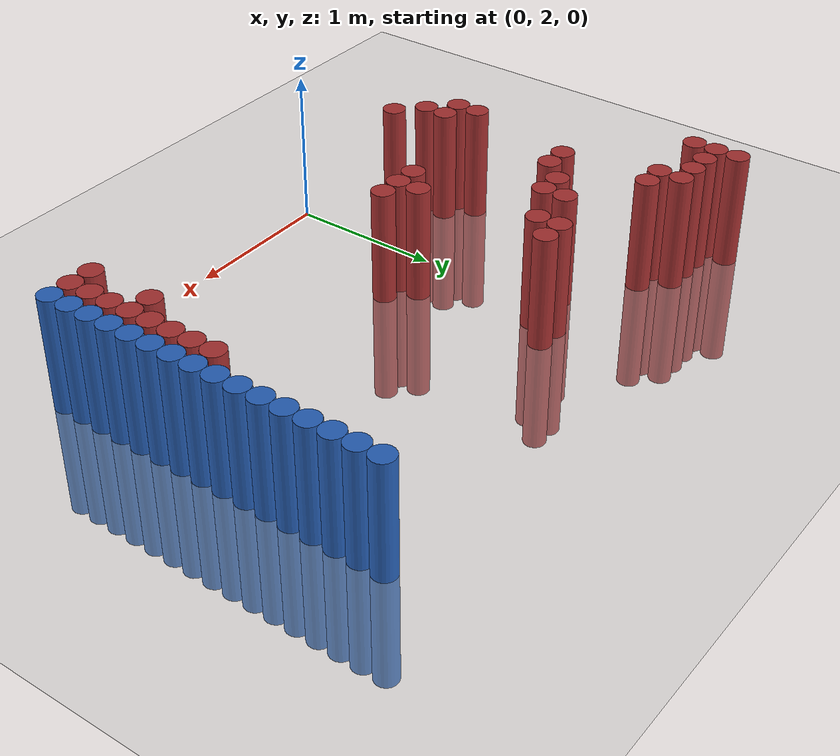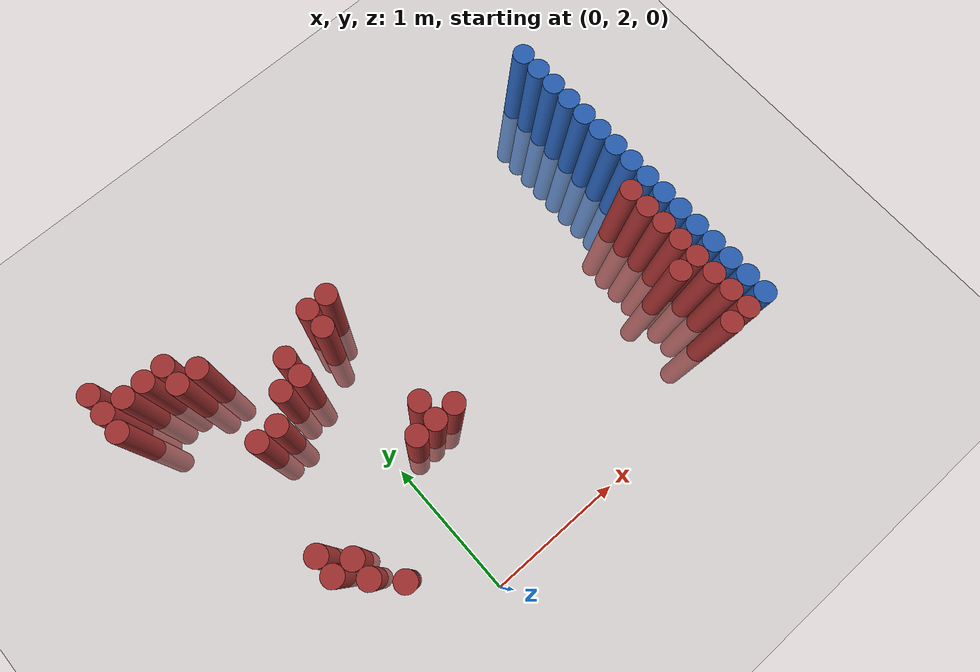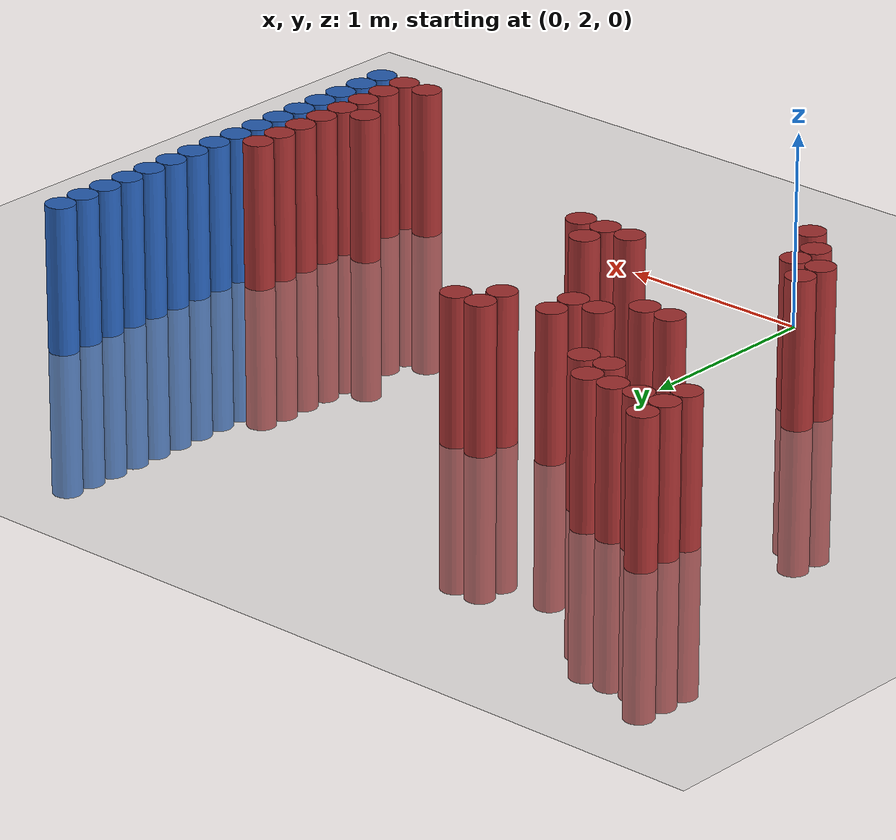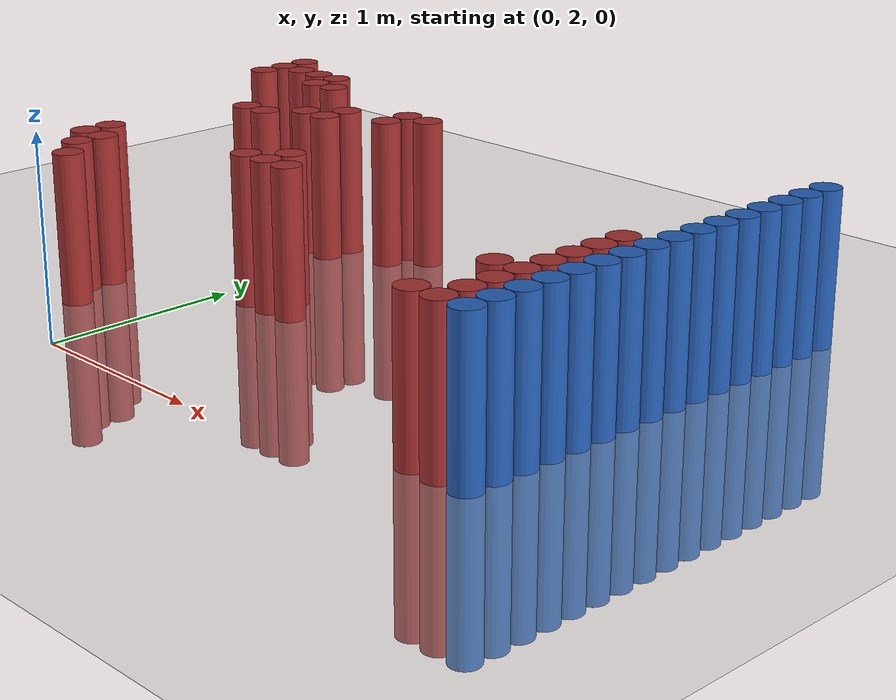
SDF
<sdf version="1.6">
 <world name="default">
  <model name="ground_plane">
   <static>1</static>
   <link name="link">
    <collision name="collision">
     <geometry><plane><normal>0 0 1</normal><size>100 100</size></plane></geometry>
     <surface><friction><ode><mu>100</mu><mu2>50</mu2></ode></friction></surface>
    </collision>
    <visual name="visual">
     <cast_shadows>0</cast_shadows>
     <geometry><plane><normal>0 0 1</normal><size>100 100</size></plane></geometry>
     <material>
      <script><uri>file://media/materials/scripts/gazebo.material</uri><name>Gazebo/Grey</name></script>
     </material>
    </visual>
   </link>
  </model>
  <model name="unit_cylinder_152">
   <static>1</static>
   <pose>-1.175000 4.225000 0.000000 0.000000 0.000000 0.000000</pose>
   <link name="link">
    <inertial>
     <mass>1</mass>
     <inertia><ixx>0.145833</ixx><ixy>0</ixy><ixz>0</ixz><iyy>0.145833</iyy><iyz>0</iyz><izz>0.125</izz></inertia>
    </inertial>
    <collision name="collision">
     <geometry><cylinder><radius>0.075000</radius><length>1.5</length></cylinder></geometry>
    </collision>
    <visual name="visual">
     <geometry><cylinder><radius>0.075000</radius><length>1.5</length></cylinder></geometry>
     <material>
      <ambient>0.648000 0.192000 0.192000 1</ambient>
      <diffuse>0.648000 0.192000 0.192000 1</diffuse>
     </material>
     <material>
      <script><name>Gazebo/Grey</name><uri>file://media/materials/scripts/gazebo.material</uri></script>
     </material>
    </visual>
   </link>
  </model>
  <model name="unit_cylinder_153">
   <static>1</static>
   <pose>-1.175000 4.375000 0.000000 0.000000 0.000000 0.000000</pose>
   <link name="link">
    <inertial>
     <mass>1</mass>
     <inertia><ixx>0.145833</ixx><ixy>0</ixy><ixz>0</ixz><iyy>0.145833</iyy><iyz>0</iyz><izz>0.125</izz></inertia>
    </inertial>
    <collision name="collision">
     <geometry><cylinder><radius>0.075000</radius><length>1.5</length></cylinder></geometry>
    </collision>
    <visual name="visual">
     <geometry><cylinder><radius>0.075000</radius><length>1.5</length></cylinder></geometry>
     <material>
      <ambient>0.648000 0.192000 0.192000 1</ambient>
      <diffuse>0.648000 0.192000 0.192000 1</diffuse>
     </material>
     <material>
      <script><name>Gazebo/Grey</name><uri>file://media/materials/scripts/gazebo.material</uri></script>
     </material>
    </visual>
   </link>
  </model>
  <model name="unit_cylinder_154">
   <static>1</static>
   <pose>-1.175000 4.525000 0.000000 0.000000 0.000000 0.000000</pose>
   <link name="link">
    <inertial>
     <mass>1</mass>
     <inertia><ixx>0.145833</ixx><ixy>0</ixy><ixz>0</ixz><iyy>0.145833</iyy><iyz>0</iyz><izz>0.125</izz></inertia>
    </inertial>
    <collision name="collision">
     <geometry><cylinder><radius>0.075000</radius><length>1.5</length></cylinder></geometry>
    </collision>
    <visual name="visual">
     <geometry><cylinder><radius>0.075000</radius><length>1.5</length></cylinder></geometry>
     <material>
      <ambient>0.648000 0.192000 0.192000 1</ambient>
      <diffuse>0.648000 0.192000 0.192000 1</diffuse>
     </material>
     <material>
      <script><name>Gazebo/Grey</name><uri>file://media/materials/scripts/gazebo.material</uri></script>
     </material>
    </visual>
   </link>
  </model>
  <model name="unit_cylinder_158">
   <static>1</static>
   <pose>-1.025000 4.375000 0.000000 0.000000 0.000000 0.000000</pose>
   <link name="link">
    <inertial>
     <mass>1</mass>
     <inertia><ixx>0.145833</ixx><ixy>0</ixy><ixz>0</ixz><iyy>0.145833</iyy><iyz>0</iyz><izz>0.125</izz></inertia>
    </inertial>
    <collision name="collision">
     <geometry><cylinder><radius>0.075000</radius><length>1.5</length></cylinder></geometry>
    </collision>
    <visual name="visual">
     <geometry><cylinder><radius>0.075000</radius><length>1.5</length></cylinder></geometry>
     <material>
      <ambient>0.648000 0.192000 0.192000 1</ambient>
      <diffuse>0.648000 0.192000 0.192000 1</diffuse>
     </material>
     <material>
      <script><name>Gazebo/Grey</name><uri>file://media/materials/scripts/gazebo.material</uri></script>
     </material>
    </visual>
   </link>
  </model>
  <model name="unit_cylinder_159">
   <static>1</static>
   <pose>-0.875000 4.375000 0.000000 0.000000 0.000000 0.000000</pose>
   <link name="link">
    <inertial>
     <mass>1</mass>
     <inertia><ixx>0.145833</ixx><ixy>0</ixy><ixz>0</ixz><iyy>0.145833</iyy><iyz>0</iyz><izz>0.125</izz></inertia>
    </inertial>
    <collision name="collision">
     <geometry><cylinder><radius>0.075000</radius><length>1.5</length></cylinder></geometry>
    </collision>
    <visual name="visual">
     <geometry><cylinder><radius>0.075000</radius><length>1.5</length></cylinder></geometry>
     <material>
      <ambient>0.648000 0.192000 0.192000 1</ambient>
      <diffuse>0.648000 0.192000 0.192000 1</diffuse>
     </material>
     <material>
      <script><name>Gazebo/Grey</name><uri>file://media/materials/scripts/gazebo.material</uri></script>
     </material>
    </visual>
   </link>
  </model>
  <model name="unit_cylinder_160">
   <static>1</static>
   <pose>-0.725000 2.725000 0.000000 0.000000 0.000000 0.000000</pose>
   <link name="link">
    <inertial>
     <mass>1</mass>
     <inertia><ixx>0.145833</ixx><ixy>0</ixy><ixz>0</ixz><iyy>0.145833</iyy><iyz>0</iyz><izz>0.125</izz></inertia>
    </inertial>
    <collision name="collision">
     <geometry><cylinder><radius>0.075000</radius><length>1.5</length></cylinder></geometry>
    </collision>
    <visual name="visual">
     <geometry><cylinder><radius>0.075000</radius><length>1.5</length></cylinder></geometry>
     <material>
      <ambient>0.648000 0.192000 0.192000 1</ambient>
      <diffuse>0.648000 0.192000 0.192000 1</diffuse>
     </material>
     <material>
      <script><name>Gazebo/Grey</name><uri>file://media/materials/scripts/gazebo.material</uri></script>
     </material>
    </visual>
   </link>
  </model>
  <model name="unit_cylinder_161">
   <static>1</static>
   <pose>-0.725000 2.875000 0.000000 0.000000 0.000000 0.000000</pose>
   <link name="link">
    <inertial>
     <mass>1</mass>
     <inertia><ixx>0.145833</ixx><ixy>0</ixy><ixz>0</ixz><iyy>0.145833</iyy><iyz>0</iyz><izz>0.125</izz></inertia>
    </inertial>
    <collision name="collision">
     <geometry><cylinder><radius>0.075000</radius><length>1.5</length></cylinder></geometry>
    </collision>
    <visual name="visual">
     <geometry><cylinder><radius>0.075000</radius><length>1.5</length></cylinder></geometry>
     <material>
      <ambient>0.648000 0.192000 0.192000 1</ambient>
      <diffuse>0.648000 0.192000 0.192000 1</diffuse>
     </material>
     <material>
      <script><name>Gazebo/Grey</name><uri>file://media/materials/scripts/gazebo.material</uri></script>
     </material>
    </visual>
   </link>
  </model>
  <model name="unit_cylinder_162">
   <static>1</static>
   <pose>-0.725000 4.225000 0.000000 0.000000 0.000000 0.000000</pose>
   <link name="link">
    <inertial>
     <mass>1</mass>
     <inertia><ixx>0.145833</ixx><ixy>0</ixy><ixz>0</ixz><iyy>0.145833</iyy><iyz>0</iyz><izz>0.125</izz></inertia>
    </inertial>
    <collision name="collision">
     <geometry><cylinder><radius>0.075000</radius><length>1.5</length></cylinder></geometry>
    </collision>
    <visual name="visual">
     <geometry><cylinder><radius>0.075000</radius><length>1.5</length></cylinder></geometry>
     <material>
      <ambient>0.648000 0.192000 0.192000 1</ambient>
      <diffuse>0.648000 0.192000 0.192000 1</diffuse>
     </material>
     <material>
      <script><name>Gazebo/Grey</name><uri>file://media/materials/scripts/gazebo.material</uri></script>
     </material>
    </visual>
   </link>
  </model>
  <model name="unit_cylinder_163">
   <static>1</static>
   <pose>-0.725000 4.375000 0.000000 0.000000 0.000000 0.000000</pose>
   <link name="link">
    <inertial>
     <mass>1</mass>
     <inertia><ixx>0.145833</ixx><ixy>0</ixy><ixz>0</ixz><iyy>0.145833</iyy><iyz>0</iyz><izz>0.125</izz></inertia>
    </inertial>
    <collision name="collision">
     <geometry><cylinder><radius>0.075000</radius><length>1.5</length></cylinder></geometry>
    </collision>
    <visual name="visual">
     <geometry><cylinder><radius>0.075000</radius><length>1.5</length></cylinder></geometry>
     <material>
      <ambient>0.648000 0.192000 0.192000 1</ambient>
      <diffuse>0.648000 0.192000 0.192000 1</diffuse>
     </material>
     <material>
      <script><name>Gazebo/Grey</name><uri>file://media/materials/scripts/gazebo.material</uri></script>
     </material>
    </visual>
   </link>
  </model>
  <model name="unit_cylinder_164">
   <static>1</static>
   <pose>-0.575000 2.575000 0.000000 0.000000 0.000000 0.000000</pose>
   <link name="link">
    <inertial>
     <mass>1</mass>
     <inertia><ixx>0.145833</ixx><ixy>0</ixy><ixz>0</ixz><iyy>0.145833</iyy><iyz>0</iyz><izz>0.125</izz></inertia>
    </inertial>
    <collision name="collision">
     <geometry><cylinder><radius>0.075000</radius><length>1.5</length></cylinder></geometry>
    </collision>
    <visual name="visual">
     <geometry><cylinder><radius>0.075000</radius><length>1.5</length></cylinder></geometry>
     <material>
      <ambient>0.648000 0.192000 0.192000 1</ambient>
      <diffuse>0.648000 0.192000 0.192000 1</diffuse>
     </material>
     <material>
      <script><name>Gazebo/Grey</name><uri>file://media/materials/scripts/gazebo.material</uri></script>
     </material>
    </visual>
   </link>
  </model>
  <model name="unit_cylinder_165">
   <static>1</static>
   <pose>-0.575000 2.725000 0.000000 0.000000 0.000000 0.000000</pose>
   <link name="link">
    <inertial>
     <mass>1</mass>
     <inertia><ixx>0.145833</ixx><ixy>0</ixy><ixz>0</ixz><iyy>0.145833</iyy><iyz>0</iyz><izz>0.125</izz></inertia>
    </inertial>
    <collision name="collision">
     <geometry><cylinder><radius>0.075000</radius><length>1.5</length></cylinder></geometry>
    </collision>
    <visual name="visual">
     <geometry><cylinder><radius>0.075000</radius><length>1.5</length></cylinder></geometry>
     <material>
      <ambient>0.648000 0.192000 0.192000 1</ambient>
      <diffuse>0.648000 0.192000 0.192000 1</diffuse>
     </material>
     <material>
      <script><name>Gazebo/Grey</name><uri>file://media/materials/scripts/gazebo.material</uri></script>
     </material>
    </visual>
   </link>
  </model>
  <model name="unit_cylinder_166">
   <static>1</static>
   <pose>-0.575000 3.625000 0.000000 0.000000 0.000000 0.000000</pose>
   <link name="link">
    <inertial>
     <mass>1</mass>
     <inertia><ixx>0.145833</ixx><ixy>0</ixy><ixz>0</ixz><iyy>0.145833</iyy><iyz>0</iyz><izz>0.125</izz></inertia>
    </inertial>
    <collision name="collision">
     <geometry><cylinder><radius>0.075000</radius><length>1.5</length></cylinder></geometry>
    </collision>
    <visual name="visual">
     <geometry><cylinder><radius>0.075000</radius><length>1.5</length></cylinder></geometry>
     <material>
      <ambient>0.648000 0.192000 0.192000 1</ambient>
      <diffuse>0.648000 0.192000 0.192000 1</diffuse>
     </material>
     <material>
      <script><name>Gazebo/Grey</name><uri>file://media/materials/scripts/gazebo.material</uri></script>
     </material>
    </visual>
   </link>
  </model>
  <model name="unit_cylinder_167">
   <static>1</static>
   <pose>-0.575000 4.225000 0.000000 0.000000 0.000000 0.000000</pose>
   <link name="link">
    <inertial>
     <mass>1</mass>
     <inertia><ixx>0.145833</ixx><ixy>0</ixy><ixz>0</ixz><iyy>0.145833</iyy><iyz>0</iyz><izz>0.125</izz></inertia>
    </inertial>
    <collision name="collision">
     <geometry><cylinder><radius>0.075000</radius><length>1.5</length></cylinder></geometry>
    </collision>
    <visual name="visual">
     <geometry><cylinder><radius>0.075000</radius><length>1.5</length></cylinder></geometry>
     <material>
      <ambient>0.648000 0.192000 0.192000 1</ambient>
      <diffuse>0.648000 0.192000 0.192000 1</diffuse>
     </material>
     <material>
      <script><name>Gazebo/Grey</name><uri>file://media/materials/scripts/gazebo.material</uri></script>
     </material>
    </visual>
   </link>
  </model>
  <model name="unit_cylinder_171">
   <static>1</static>
   <pose>-0.425000 2.425000 0.000000 0.000000 0.000000 0.000000</pose>
   <link name="link">
    <inertial>
     <mass>1</mass>
     <inertia><ixx>0.145833</ixx><ixy>0</ixy><ixz>0</ixz><iyy>0.145833</iyy><iyz>0</iyz><izz>0.125</izz></inertia>
    </inertial>
    <collision name="collision">
     <geometry><cylinder><radius>0.075000</radius><length>1.5</length></cylinder></geometry>
    </collision>
    <visual name="visual">
     <geometry><cylinder><radius>0.075000</radius><length>1.5</length></cylinder></geometry>
     <material>
      <ambient>0.648000 0.192000 0.192000 1</ambient>
      <diffuse>0.648000 0.192000 0.192000 1</diffuse>
     </material>
     <material>
      <script><name>Gazebo/Grey</name><uri>file://media/materials/scripts/gazebo.material</uri></script>
     </material>
    </visual>
   </link>
  </model>
  <model name="unit_cylinder_172">
   <static>1</static>
   <pose>-0.425000 3.625000 0.000000 0.000000 0.000000 0.000000</pose>
   <link name="link">
    <inertial>
     <mass>1</mass>
     <inertia><ixx>0.145833</ixx><ixy>0</ixy><ixz>0</ixz><iyy>0.145833</iyy><iyz>0</iyz><izz>0.125</izz></inertia>
    </inertial>
    <collision name="collision">
     <geometry><cylinder><radius>0.075000</radius><length>1.5</length></cylinder></geometry>
    </collision>
    <visual name="visual">
     <geometry><cylinder><radius>0.075000</radius><length>1.5</length></cylinder></geometry>
     <material>
      <ambient>0.648000 0.192000 0.192000 1</ambient>
      <diffuse>0.648000 0.192000 0.192000 1</diffuse>
     </material>
     <material>
      <script><name>Gazebo/Grey</name><uri>file://media/materials/scripts/gazebo.material</uri></script>
     </material>
    </visual>
   </link>
  </model>
  <model name="unit_cylinder_174">
   <static>1</static>
   <pose>-0.275000 3.775000 0.000000 0.000000 0.000000 0.000000</pose>
   <link name="link">
    <inertial>
     <mass>1</mass>
     <inertia><ixx>0.145833</ixx><ixy>0</ixy><ixz>0</ixz><iyy>0.145833</iyy><iyz>0</iyz><izz>0.125</izz></inertia>
    </inertial>
    <collision name="collision">
     <geometry><cylinder><radius>0.075000</radius><length>1.5</length></cylinder></geometry>
    </collision>
    <visual name="visual">
     <geometry><cylinder><radius>0.075000</radius><length>1.5</length></cylinder></geometry>
     <material>
      <ambient>0.648000 0.192000 0.192000 1</ambient>
      <diffuse>0.648000 0.192000 0.192000 1</diffuse>
     </material>
     <material>
      <script><name>Gazebo/Grey</name><uri>file://media/materials/scripts/gazebo.material</uri></script>
     </material>
    </visual>
   </link>
  </model>
  <model name="unit_cylinder_175">
   <static>1</static>
   <pose>-0.125000 3.775000 0.000000 0.000000 0.000000 0.000000</pose>
   <link name="link">
    <inertial>
     <mass>1</mass>
     <inertia><ixx>0.145833</ixx><ixy>0</ixy><ixz>0</ixz><iyy>0.145833</iyy><iyz>0</iyz><izz>0.125</izz></inertia>
    </inertial>
    <collision name="collision">
     <geometry><cylinder><radius>0.075000</radius><length>1.5</length></cylinder></geometry>
    </collision>
    <visual name="visual">
     <geometry><cylinder><radius>0.075000</radius><length>1.5</length></cylinder></geometry>
     <material>
      <ambient>0.648000 0.192000 0.192000 1</ambient>
      <diffuse>0.648000 0.192000 0.192000 1</diffuse>
     </material>
     <material>
      <script><name>Gazebo/Grey</name><uri>file://media/materials/scripts/gazebo.material</uri></script>
     </material>
    </visual>
   </link>
  </model>
  <model name="unit_cylinder_176">
   <static>1</static>
   <pose>-0.125000 3.925000 0.000000 0.000000 0.000000 0.000000</pose>
   <link name="link">
    <inertial>
     <mass>1</mass>
     <inertia><ixx>0.145833</ixx><ixy>0</ixy><ixz>0</ixz><iyy>0.145833</iyy><iyz>0</iyz><izz>0.125</izz></inertia>
    </inertial>
    <collision name="collision">
     <geometry><cylinder><radius>0.075000</radius><length>1.5</length></cylinder></geometry>
    </collision>
    <visual name="visual">
     <geometry><cylinder><radius>0.075000</radius><length>1.5</length></cylinder></geometry>
     <material>
      <ambient>0.648000 0.192000 0.192000 1</ambient>
      <diffuse>0.648000 0.192000 0.192000 1</diffuse>
     </material>
     <material>
      <script><name>Gazebo/Grey</name><uri>file://media/materials/scripts/gazebo.material</uri></script>
     </material>
    </visual>
   </link>
  </model>
  <model name="unit_cylinder_177">
   <static>1</static>
   <pose>0.175000 3.025000 0.000000 0.000000 0.000000 0.000000</pose>
   <link name="link">
    <inertial>
     <mass>1</mass>
     <inertia><ixx>0.145833</ixx><ixy>0</ixy><ixz>0</ixz><iyy>0.145833</iyy><iyz>0</iyz><izz>0.125</izz></inertia>
    </inertial>
    <collision name="collision">
     <geometry><cylinder><radius>0.075000</radius><length>1.5</length></cylinder></geometry>
    </collision>
    <visual name="visual">
     <geometry><cylinder><radius>0.075000</radius><length>1.5</length></cylinder></geometry>
     <material>
      <ambient>0.648000 0.192000 0.192000 1</ambient>
      <diffuse>0.648000 0.192000 0.192000 1</diffuse>
     </material>
     <material>
      <script><name>Gazebo/Grey</name><uri>file://media/materials/scripts/gazebo.material</uri></script>
     </material>
    </visual>
   </link>
  </model>
  <model name="unit_cylinder_178">
   <static>1</static>
   <pose>0.175000 3.925000 0.000000 0.000000 0.000000 0.000000</pose>
   <link name="link">
    <inertial>
     <mass>1</mass>
     <inertia><ixx>0.145833</ixx><ixy>0</ixy><ixz>0</ixz><iyy>0.145833</iyy><iyz>0</iyz><izz>0.125</izz></inertia>
    </inertial>
    <collision name="collision">
     <geometry><cylinder><radius>0.075000</radius><length>1.5</length></cylinder></geometry>
    </collision>
    <visual name="visual">
     <geometry><cylinder><radius>0.075000</radius><length>1.5</length></cylinder></geometry>
     <material>
      <ambient>0.648000 0.192000 0.192000 1</ambient>
      <diffuse>0.648000 0.192000 0.192000 1</diffuse>
     </material>
     <material>
      <script><name>Gazebo/Grey</name><uri>file://media/materials/scripts/gazebo.material</uri></script>
     </material>
    </visual>
   </link>
  </model>
  <model name="unit_cylinder_179">
   <static>1</static>
   <pose>0.175000 4.075000 0.000000 0.000000 0.000000 0.000000</pose>
   <link name="link">
    <inertial>
     <mass>1</mass>
     <inertia><ixx>0.145833</ixx><ixy>0</ixy><ixz>0</ixz><iyy>0.145833</iyy><iyz>0</iyz><izz>0.125</izz></inertia>
    </inertial>
    <collision name="collision">
     <geometry><cylinder><radius>0.075000</radius><length>1.5</length></cylinder></geometry>
    </collision>
    <visual name="visual">
     <geometry><cylinder><radius>0.075000</radius><length>1.5</length></cylinder></geometry>
     <material>
      <ambient>0.648000 0.192000 0.192000 1</ambient>
      <diffuse>0.648000 0.192000 0.192000 1</diffuse>
     </material>
     <material>
      <script><name>Gazebo/Grey</name><uri>file://media/materials/scripts/gazebo.material</uri></script>
     </material>
    </visual>
   </link>
  </model>
  <model name="unit_cylinder_181">
   <static>1</static>
   <pose>0.325000 3.025000 0.000000 0.000000 0.000000 0.000000</pose>
   <link name="link">
    <inertial>
     <mass>1</mass>
     <inertia><ixx>0.145833</ixx><ixy>0</ixy><ixz>0</ixz><iyy>0.145833</iyy><iyz>0</iyz><izz>0.125</izz></inertia>
    </inertial>
    <collision name="collision">
     <geometry><cylinder><radius>0.075000</radius><length>1.5</length></cylinder></geometry>
    </collision>
    <visual name="visual">
     <geometry><cylinder><radius>0.075000</radius><length>1.5</length></cylinder></geometry>
     <material>
      <ambient>0.648000 0.192000 0.192000 1</ambient>
      <diffuse>0.648000 0.192000 0.192000 1</diffuse>
     </material>
     <material>
      <script><name>Gazebo/Grey</name><uri>file://media/materials/scripts/gazebo.material</uri></script>
     </material>
    </visual>
   </link>
  </model>
  <model name="unit_cylinder_182">
   <static>1</static>
   <pose>0.325000 3.175000 0.000000 0.000000 0.000000 0.000000</pose>
   <link name="link">
    <inertial>
     <mass>1</mass>
     <inertia><ixx>0.145833</ixx><ixy>0</ixy><ixz>0</ixz><iyy>0.145833</iyy><iyz>0</iyz><izz>0.125</izz></inertia>
    </inertial>
    <collision name="collision">
     <geometry><cylinder><radius>0.075000</radius><length>1.5</length></cylinder></geometry>
    </collision>
    <visual name="visual">
     <geometry><cylinder><radius>0.075000</radius><length>1.5</length></cylinder></geometry>
     <material>
      <ambient>0.648000 0.192000 0.192000 1</ambient>
      <diffuse>0.648000 0.192000 0.192000 1</diffuse>
     </material>
     <material>
      <script><name>Gazebo/Grey</name><uri>file://media/materials/scripts/gazebo.material</uri></script>
     </material>
    </visual>
   </link>
  </model>
  <model name="unit_cylinder_183">
   <static>1</static>
   <pose>0.325000 4.075000 0.000000 0.000000 0.000000 0.000000</pose>
   <link name="link">
    <inertial>
     <mass>1</mass>
     <inertia><ixx>0.145833</ixx><ixy>0</ixy><ixz>0</ixz><iyy>0.145833</iyy><iyz>0</iyz><izz>0.125</izz></inertia>
    </inertial>
    <collision name="collision">
     <geometry><cylinder><radius>0.075000</radius><length>1.5</length></cylinder></geometry>
    </collision>
    <visual name="visual">
     <geometry><cylinder><radius>0.075000</radius><length>1.5</length></cylinder></geometry>
     <material>
      <ambient>0.648000 0.192000 0.192000 1</ambient>
      <diffuse>0.648000 0.192000 0.192000 1</diffuse>
     </material>
     <material>
      <script><name>Gazebo/Grey</name><uri>file://media/materials/scripts/gazebo.material</uri></script>
     </material>
    </visual>
   </link>
  </model>
  <model name="unit_cylinder_184">
   <static>1</static>
   <pose>0.475000 3.025000 0.000000 0.000000 0.000000 0.000000</pose>
   <link name="link">
    <inertial>
     <mass>1</mass>
     <inertia><ixx>0.145833</ixx><ixy>0</ixy><ixz>0</ixz><iyy>0.145833</iyy><iyz>0</iyz><izz>0.125</izz></inertia>
    </inertial>
    <collision name="collision">
     <geometry><cylinder><radius>0.075000</radius><length>1.5</length></cylinder></geometry>
    </collision>
    <visual name="visual">
     <geometry><cylinder><radius>0.075000</radius><length>1.5</length></cylinder></geometry>
     <material>
      <ambient>0.648000 0.192000 0.192000 1</ambient>
      <diffuse>0.648000 0.192000 0.192000 1</diffuse>
     </material>
     <material>
      <script><name>Gazebo/Grey</name><uri>file://media/materials/scripts/gazebo.material</uri></script>
     </material>
    </visual>
   </link>
  </model>
  <model name="unit_cylinder_210">
   <static>1</static>
   <pose>2.125000 2.275000 0.000000 0.000000 0.000000 0.000000</pose>
   <link name="link">
    <inertial>
     <mass>1</mass>
     <inertia><ixx>0.145833</ixx><ixy>0</ixy><ixz>0</ixz><iyy>0.145833</iyy><iyz>0</iyz><izz>0.125</izz></inertia>
    </inertial>
    <collision name="collision">
     <geometry><cylinder><radius>0.075000</radius><length>1.5</length></cylinder></geometry>
    </collision>
    <visual name="visual">
     <geometry><cylinder><radius>0.075000</radius><length>1.5</length></cylinder></geometry>
     <material>
      <ambient>0.648000 0.192000 0.192000 1</ambient>
      <diffuse>0.648000 0.192000 0.192000 1</diffuse>
     </material>
     <material>
      <script><name>Gazebo/Grey</name><uri>file://media/materials/scripts/gazebo.material</uri></script>
     </material>
    </visual>
   </link>
  </model>
  <model name="unit_cylinder_211">
   <static>1</static>
   <pose>2.125000 2.725000 0.000000 0.000000 0.000000 0.000000</pose>
   <link name="link">
    <inertial>
     <mass>1</mass>
     <inertia><ixx>0.145833</ixx><ixy>0</ixy><ixz>0</ixz><iyy>0.145833</iyy><iyz>0</iyz><izz>0.125</izz></inertia>
    </inertial>
    <collision name="collision">
     <geometry><cylinder><radius>0.075000</radius><length>1.5</length></cylinder></geometry>
    </collision>
    <visual name="visual">
     <geometry><cylinder><radius>0.075000</radius><length>1.5</length></cylinder></geometry>
     <material>
      <ambient>0.648000 0.192000 0.192000 1</ambient>
      <diffuse>0.648000 0.192000 0.192000 1</diffuse>
     </material>
     <material>
      <script><name>Gazebo/Grey</name><uri>file://media/materials/scripts/gazebo.material</uri></script>
     </material>
    </visual>
   </link>
  </model>
  <model name="unit_cylinder_218">
   <static>1</static>
   <pose>2.275000 2.275000 0.000000 0.000000 0.000000 0.000000</pose>
   <link name="link">
    <inertial>
     <mass>1</mass>
     <inertia><ixx>0.145833</ixx><ixy>0</ixy><ixz>0</ixz><iyy>0.145833</iyy><iyz>0</iyz><izz>0.125</izz></inertia>
    </inertial>
    <collision name="collision">
     <geometry><cylinder><radius>0.075000</radius><length>1.5</length></cylinder></geometry>
    </collision>
    <visual name="visual">
     <geometry><cylinder><radius>0.075000</radius><length>1.5</length></cylinder></geometry>
     <material>
      <ambient>0.648000 0.192000 0.192000 1</ambient>
      <diffuse>0.648000 0.192000 0.192000 1</diffuse>
     </material>
     <material>
      <script><name>Gazebo/Grey</name><uri>file://media/materials/scripts/gazebo.material</uri></script>
     </material>
    </visual>
   </link>
  </model>
  <model name="unit_cylinder_219">
   <static>1</static>
   <pose>2.275000 2.425000 0.000000 0.000000 0.000000 0.000000</pose>
   <link name="link">
    <inertial>
     <mass>1</mass>
     <inertia><ixx>0.145833</ixx><ixy>0</ixy><ixz>0</ixz><iyy>0.145833</iyy><iyz>0</iyz><izz>0.125</izz></inertia>
    </inertial>
    <collision name="collision">
     <geometry><cylinder><radius>0.075000</radius><length>1.5</length></cylinder></geometry>
    </collision>
    <visual name="visual">
     <geometry><cylinder><radius>0.075000</radius><length>1.5</length></cylinder></geometry>
     <material>
      <ambient>0.648000 0.192000 0.192000 1</ambient>
      <diffuse>0.648000 0.192000 0.192000 1</diffuse>
     </material>
     <material>
      <script><name>Gazebo/Grey</name><uri>file://media/materials/scripts/gazebo.material</uri></script>
     </material>
    </visual>
   </link>
  </model>
  <model name="unit_cylinder_220">
   <static>1</static>
   <pose>2.275000 2.575000 0.000000 0.000000 0.000000 0.000000</pose>
   <link name="link">
    <inertial>
     <mass>1</mass>
     <inertia><ixx>0.145833</ixx><ixy>0</ixy><ixz>0</ixz><iyy>0.145833</iyy><iyz>0</iyz><izz>0.125</izz></inertia>
    </inertial>
    <collision name="collision">
     <geometry><cylinder><radius>0.075000</radius><length>1.5</length></cylinder></geometry>
    </collision>
    <visual name="visual">
     <geometry><cylinder><radius>0.075000</radius><length>1.5</length></cylinder></geometry>
     <material>
      <ambient>0.648000 0.192000 0.192000 1</ambient>
      <diffuse>0.648000 0.192000 0.192000 1</diffuse>
     </material>
     <material>
      <script><name>Gazebo/Grey</name><uri>file://media/materials/scripts/gazebo.material</uri></script>
     </material>
    </visual>
   </link>
  </model>
  <model name="unit_cylinder_221">
   <static>1</static>
   <pose>2.275000 2.725000 0.000000 0.000000 0.000000 0.000000</pose>
   <link name="link">
    <inertial>
     <mass>1</mass>
     <inertia><ixx>0.145833</ixx><ixy>0</ixy><ixz>0</ixz><iyy>0.145833</iyy><iyz>0</iyz><izz>0.125</izz></inertia>
    </inertial>
    <collision name="collision">
     <geometry><cylinder><radius>0.075000</radius><length>1.5</length></cylinder></geometry>
    </collision>
    <visual name="visual">
     <geometry><cylinder><radius>0.075000</radius><length>1.5</length></cylinder></geometry>
     <material>
      <ambient>0.648000 0.192000 0.192000 1</ambient>
      <diffuse>0.648000 0.192000 0.192000 1</diffuse>
     </material>
     <material>
      <script><name>Gazebo/Grey</name><uri>file://media/materials/scripts/gazebo.material</uri></script>
     </material>
    </visual>
   </link>
  </model>
  <model name="unit_cylinder_222">
   <static>1</static>
   <pose>2.275000 2.875000 0.000000 0.000000 0.000000 0.000000</pose>
   <link name="link">
    <inertial>
     <mass>1</mass>
     <inertia><ixx>0.145833</ixx><ixy>0</ixy><ixz>0</ixz><iyy>0.145833</iyy><iyz>0</iyz><izz>0.125</izz></inertia>
    </inertial>
    <collision name="collision">
     <geometry><cylinder><radius>0.075000</radius><length>1.5</length></cylinder></geometry>
    </collision>
    <visual name="visual">
     <geometry><cylinder><radius>0.075000</radius><length>1.5</length></cylinder></geometry>
     <material>
      <ambient>0.648000 0.192000 0.192000 1</ambient>
      <diffuse>0.648000 0.192000 0.192000 1</diffuse>
     </material>
     <material>
      <script><name>Gazebo/Grey</name><uri>file://media/materials/scripts/gazebo.material</uri></script>
     </material>
    </visual>
   </link>
  </model>
  <model name="unit_cylinder_223">
   <static>1</static>
   <pose>2.275000 3.025000 0.000000 0.000000 0.000000 0.000000</pose>
   <link name="link">
    <inertial>
     <mass>1</mass>
     <inertia><ixx>0.145833</ixx><ixy>0</ixy><ixz>0</ixz><iyy>0.145833</iyy><iyz>0</iyz><izz>0.125</izz></inertia>
    </inertial>
    <collision name="collision">
     <geometry><cylinder><radius>0.075000</radius><length>1.5</length></cylinder></geometry>
    </collision>
    <visual name="visual">
     <geometry><cylinder><radius>0.075000</radius><length>1.5</length></cylinder></geometry>
     <material>
      <ambient>0.648000 0.192000 0.192000 1</ambient>
      <diffuse>0.648000 0.192000 0.192000 1</diffuse>
     </material>
     <material>
      <script><name>Gazebo/Grey</name><uri>file://media/materials/scripts/gazebo.material</uri></script>
     </material>
    </visual>
   </link>
  </model>
  <model name="unit_cylinder_224">
   <static>1</static>
   <pose>2.275000 3.175000 0.000000 0.000000 0.000000 0.000000</pose>
   <link name="link">
    <inertial>
     <mass>1</mass>
     <inertia><ixx>0.145833</ixx><ixy>0</ixy><ixz>0</ixz><iyy>0.145833</iyy><iyz>0</iyz><izz>0.125</izz></inertia>
    </inertial>
    <collision name="collision">
     <geometry><cylinder><radius>0.075000</radius><length>1.5</length></cylinder></geometry>
    </collision>
    <visual name="visual">
     <geometry><cylinder><radius>0.075000</radius><length>1.5</length></cylinder></geometry>
     <material>
      <ambient>0.648000 0.192000 0.192000 1</ambient>
      <diffuse>0.648000 0.192000 0.192000 1</diffuse>
     </material>
     <material>
      <script><name>Gazebo/Grey</name><uri>file://media/materials/scripts/gazebo.material</uri></script>
     </material>
    </visual>
   </link>
  </model>
  <model name="unit_cylinder_225">
   <static>1</static>
   <pose>2.275000 3.325000 0.000000 0.000000 0.000000 0.000000</pose>
   <link name="link">
    <inertial>
     <mass>1</mass>
     <inertia><ixx>0.145833</ixx><ixy>0</ixy><ixz>0</ixz><iyy>0.145833</iyy><iyz>0</iyz><izz>0.125</izz></inertia>
    </inertial>
    <collision name="collision">
     <geometry><cylinder><radius>0.075000</radius><length>1.5</length></cylinder></geometry>
    </collision>
    <visual name="visual">
     <geometry><cylinder><radius>0.075000</radius><length>1.5</length></cylinder></geometry>
     <material>
      <ambient>0.648000 0.192000 0.192000 1</ambient>
      <diffuse>0.648000 0.192000 0.192000 1</diffuse>
     </material>
     <material>
      <script><name>Gazebo/Grey</name><uri>file://media/materials/scripts/gazebo.material</uri></script>
     </material>
    </visual>
   </link>
  </model>
  <model name="unit_cylinder_240">
   <static>1</static>
   <pose>2.425000 2.275000 0.000000 0.000000 0.000000 0.000000</pose>
   <link name="link">
    <inertial>
     <mass>1</mass>
     <inertia><ixx>0.145833</ixx><ixy>0</ixy><ixz>0</ixz><iyy>0.145833</iyy><iyz>0</iyz><izz>0.125</izz></inertia>
    </inertial>
    <collision name="collision">
     <geometry><cylinder><radius>0.075000</radius><length>1.5</length></cylinder></geometry>
    </collision>
    <visual name="visual">
     <geometry><cylinder><radius>0.075000</radius><length>1.5</length></cylinder></geometry>
     <material>
      <ambient>0.152000 0.379000 0.720000 1</ambient>
      <diffuse>0.152000 0.379000 0.720000 1</diffuse>
     </material>
     <material>
      <script><name>Gazebo/Grey</name><uri>file://media/materials/scripts/gazebo.material</uri></script>
     </material>
    </visual>
   </link>
  </model>
  <model name="unit_cylinder_241">
   <static>1</static>
   <pose>2.425000 2.425000 0.000000 0.000000 0.000000 0.000000</pose>
   <link name="link">
    <inertial>
     <mass>1</mass>
     <inertia><ixx>0.145833</ixx><ixy>0</ixy><ixz>0</ixz><iyy>0.145833</iyy><iyz>0</iyz><izz>0.125</izz></inertia>
    </inertial>
    <collision name="collision">
     <geometry><cylinder><radius>0.075000</radius><length>1.5</length></cylinder></geometry>
    </collision>
    <visual name="visual">
     <geometry><cylinder><radius>0.075000</radius><length>1.5</length></cylinder></geometry>
     <material>
      <ambient>0.152000 0.379000 0.720000 1</ambient>
      <diffuse>0.152000 0.379000 0.720000 1</diffuse>
     </material>
     <material>
      <script><name>Gazebo/Grey</name><uri>file://media/materials/scripts/gazebo.material</uri></script>
     </material>
    </visual>
   </link>
  </model>
  <model name="unit_cylinder_242">
   <static>1</static>
   <pose>2.425000 2.575000 0.000000 0.000000 0.000000 0.000000</pose>
   <link name="link">
    <inertial>
     <mass>1</mass>
     <inertia><ixx>0.145833</ixx><ixy>0</ixy><ixz>0</ixz><iyy>0.145833</iyy><iyz>0</iyz><izz>0.125</izz></inertia>
    </inertial>
    <collision name="collision">
     <geometry><cylinder><radius>0.075000</radius><length>1.5</length></cylinder></geometry>
    </collision>
    <visual name="visual">
     <geometry><cylinder><radius>0.075000</radius><length>1.5</length></cylinder></geometry>
     <material>
      <ambient>0.152000 0.379000 0.720000 1</ambient>
      <diffuse>0.152000 0.379000 0.720000 1</diffuse>
     </material>
     <material>
      <script><name>Gazebo/Grey</name><uri>file://media/materials/scripts/gazebo.material</uri></script>
     </material>
    </visual>
   </link>
  </model>
  <model name="unit_cylinder_243">
   <static>1</static>
   <pose>2.425000 2.725000 0.000000 0.000000 0.000000 0.000000</pose>
   <link name="link">
    <inertial>
     <mass>1</mass>
     <inertia><ixx>0.145833</ixx><ixy>0</ixy><ixz>0</ixz><iyy>0.145833</iyy><iyz>0</iyz><izz>0.125</izz></inertia>
    </inertial>
    <collision name="collision">
     <geometry><cylinder><radius>0.075000</radius><length>1.5</length></cylinder></geometry>
    </collision>
    <visual name="visual">
     <geometry><cylinder><radius>0.075000</radius><length>1.5</length></cylinder></geometry>
     <material>
      <ambient>0.152000 0.379000 0.720000 1</ambient>
      <diffuse>0.152000 0.379000 0.720000 1</diffuse>
     </material>
     <material>
      <script><name>Gazebo/Grey</name><uri>file://media/materials/scripts/gazebo.material</uri></script>
     </material>
    </visual>
   </link>
  </model>
  <model name="unit_cylinder_244">
   <static>1</static>
   <pose>2.425000 2.875000 0.000000 0.000000 0.000000 0.000000</pose>
   <link name="link">
    <inertial>
     <mass>1</mass>
     <inertia><ixx>0.145833</ixx><ixy>0</ixy><ixz>0</ixz><iyy>0.145833</iyy><iyz>0</iyz><izz>0.125</izz></inertia>
    </inertial>
    <collision name="collision">
     <geometry><cylinder><radius>0.075000</radius><length>1.5</length></cylinder></geometry>
    </collision>
    <visual name="visual">
     <geometry><cylinder><radius>0.075000</radius><length>1.5</length></cylinder></geometry>
     <material>
      <ambient>0.152000 0.379000 0.720000 1</ambient>
      <diffuse>0.152000 0.379000 0.720000 1</diffuse>
     </material>
     <material>
      <script><name>Gazebo/Grey</name><uri>file://media/materials/scripts/gazebo.material</uri></script>
     </material>
    </visual>
   </link>
  </model>
  <model name="unit_cylinder_245">
   <static>1</static>
   <pose>2.425000 3.025000 0.000000 0.000000 0.000000 0.000000</pose>
   <link name="link">
    <inertial>
     <mass>1</mass>
     <inertia><ixx>0.145833</ixx><ixy>0</ixy><ixz>0</ixz><iyy>0.145833</iyy><iyz>0</iyz><izz>0.125</izz></inertia>
    </inertial>
    <collision name="collision">
     <geometry><cylinder><radius>0.075000</radius><length>1.5</length></cylinder></geometry>
    </collision>
    <visual name="visual">
     <geometry><cylinder><radius>0.075000</radius><length>1.5</length></cylinder></geometry>
     <material>
      <ambient>0.152000 0.379000 0.720000 1</ambient>
      <diffuse>0.152000 0.379000 0.720000 1</diffuse>
     </material>
     <material>
      <script><name>Gazebo/Grey</name><uri>file://media/materials/scripts/gazebo.material</uri></script>
     </material>
    </visual>
   </link>
  </model>
  <model name="unit_cylinder_246">
   <static>1</static>
   <pose>2.425000 3.175000 0.000000 0.000000 0.000000 0.000000</pose>
   <link name="link">
    <inertial>
     <mass>1</mass>
     <inertia><ixx>0.145833</ixx><ixy>0</ixy><ixz>0</ixz><iyy>0.145833</iyy><iyz>0</iyz><izz>0.125</izz></inertia>
    </inertial>
    <collision name="collision">
     <geometry><cylinder><radius>0.075000</radius><length>1.5</length></cylinder></geometry>
    </collision>
    <visual name="visual">
     <geometry><cylinder><radius>0.075000</radius><length>1.5</length></cylinder></geometry>
     <material>
      <ambient>0.152000 0.379000 0.720000 1</ambient>
      <diffuse>0.152000 0.379000 0.720000 1</diffuse>
     </material>
     <material>
      <script><name>Gazebo/Grey</name><uri>file://media/materials/scripts/gazebo.material</uri></script>
     </material>
    </visual>
   </link>
  </model>
  <model name="unit_cylinder_247">
   <static>1</static>
   <pose>2.425000 3.325000 0.000000 0.000000 0.000000 0.000000</pose>
   <link name="link">
    <inertial>
     <mass>1</mass>
     <inertia><ixx>0.145833</ixx><ixy>0</ixy><ixz>0</ixz><iyy>0.145833</iyy><iyz>0</iyz><izz>0.125</izz></inertia>
    </inertial>
    <collision name="collision">
     <geometry><cylinder><radius>0.075000</radius><length>1.5</length></cylinder></geometry>
    </collision>
    <visual name="visual">
     <geometry><cylinder><radius>0.075000</radius><length>1.5</length></cylinder></geometry>
     <material>
      <ambient>0.152000 0.379000 0.720000 1</ambient>
      <diffuse>0.152000 0.379000 0.720000 1</diffuse>
     </material>
     <material>
      <script><name>Gazebo/Grey</name><uri>file://media/materials/scripts/gazebo.material</uri></script>
     </material>
    </visual>
   </link>
  </model>
  <model name="unit_cylinder_248">
   <static>1</static>
   <pose>2.425000 3.475000 0.000000 0.000000 0.000000 0.000000</pose>
   <link name="link">
    <inertial>
     <mass>1</mass>
     <inertia><ixx>0.145833</ixx><ixy>0</ixy><ixz>0</ixz><iyy>0.145833</iyy><iyz>0</iyz><izz>0.125</izz></inertia>
    </inertial>
    <collision name="collision">
     <geometry><cylinder><radius>0.075000</radius><length>1.5</length></cylinder></geometry>
    </collision>
    <visual name="visual">
     <geometry><cylinder><radius>0.075000</radius><length>1.5</length></cylinder></geometry>
     <material>
      <ambient>0.152000 0.379000 0.720000 1</ambient>
      <diffuse>0.152000 0.379000 0.720000 1</diffuse>
     </material>
     <material>
      <script><name>Gazebo/Grey</name><uri>file://media/materials/scripts/gazebo.material</uri></script>
     </material>
    </visual>
   </link>
  </model>
  <model name="unit_cylinder_249">
   <static>1</static>
   <pose>2.425000 3.625000 0.000000 0.000000 0.000000 0.000000</pose>
   <link name="link">
    <inertial>
     <mass>1</mass>
     <inertia><ixx>0.145833</ixx><ixy>0</ixy><ixz>0</ixz><iyy>0.145833</iyy><iyz>0</iyz><izz>0.125</izz></inertia>
    </inertial>
    <collision name="collision">
     <geometry><cylinder><radius>0.075000</radius><length>1.5</length></cylinder></geometry>
    </collision>
    <visual name="visual">
     <geometry><cylinder><radius>0.075000</radius><length>1.5</length></cylinder></geometry>
     <material>
      <ambient>0.152000 0.379000 0.720000 1</ambient>
      <diffuse>0.152000 0.379000 0.720000 1</diffuse>
     </material>
     <material>
      <script><name>Gazebo/Grey</name><uri>file://media/materials/scripts/gazebo.material</uri></script>
     </material>
    </visual>
   </link>
  </model>
  <model name="unit_cylinder_250">
   <static>1</static>
   <pose>2.425000 3.775000 0.000000 0.000000 0.000000 0.000000</pose>
   <link name="link">
    <inertial>
     <mass>1</mass>
     <inertia><ixx>0.145833</ixx><ixy>0</ixy><ixz>0</ixz><iyy>0.145833</iyy><iyz>0</iyz><izz>0.125</izz></inertia>
    </inertial>
    <collision name="collision">
     <geometry><cylinder><radius>0.075000</radius><length>1.5</length></cylinder></geometry>
    </collision>
    <visual name="visual">
     <geometry><cylinder><radius>0.075000</radius><length>1.5</length></cylinder></geometry>
     <material>
      <ambient>0.152000 0.379000 0.720000 1</ambient>
      <diffuse>0.152000 0.379000 0.720000 1</diffuse>
     </material>
     <material>
      <script><name>Gazebo/Grey</name><uri>file://media/materials/scripts/gazebo.material</uri></script>
     </material>
    </visual>
   </link>
  </model>
  <model name="unit_cylinder_251">
   <static>1</static>
   <pose>2.425000 3.925000 0.000000 0.000000 0.000000 0.000000</pose>
   <link name="link">
    <inertial>
     <mass>1</mass>
     <inertia><ixx>0.145833</ixx><ixy>0</ixy><ixz>0</ixz><iyy>0.145833</iyy><iyz>0</iyz><izz>0.125</izz></inertia>
    </inertial>
    <collision name="collision">
     <geometry><cylinder><radius>0.075000</radius><length>1.5</length></cylinder></geometry>
    </collision>
    <visual name="visual">
     <geometry><cylinder><radius>0.075000</radius><length>1.5</length></cylinder></geometry>
     <material>
      <ambient>0.152000 0.379000 0.720000 1</ambient>
      <diffuse>0.152000 0.379000 0.720000 1</diffuse>
     </material>
     <material>
      <script><name>Gazebo/Grey</name><uri>file://media/materials/scripts/gazebo.material</uri></script>
     </material>
    </visual>
   </link>
  </model>
  <model name="unit_cylinder_252">
   <static>1</static>
   <pose>2.425000 4.075000 0.000000 0.000000 0.000000 0.000000</pose>
   <link name="link">
    <inertial>
     <mass>1</mass>
     <inertia><ixx>0.145833</ixx><ixy>0</ixy><ixz>0</ixz><iyy>0.145833</iyy><iyz>0</iyz><izz>0.125</izz></inertia>
    </inertial>
    <collision name="collision">
     <geometry><cylinder><radius>0.075000</radius><length>1.5</length></cylinder></geometry>
    </collision>
    <visual name="visual">
     <geometry><cylinder><radius>0.075000</radius><length>1.5</length></cylinder></geometry>
     <material>
      <ambient>0.152000 0.379000 0.720000 1</ambient>
      <diffuse>0.152000 0.379000 0.720000 1</diffuse>
     </material>
     <material>
      <script><name>Gazebo/Grey</name><uri>file://media/materials/scripts/gazebo.material</uri></script>
     </material>
    </visual>
   </link>
  </model>
  <model name="unit_cylinder_253">
   <static>1</static>
   <pose>2.425000 4.225000 0.000000 0.000000 0.000000 0.000000</pose>
   <link name="link">
    <inertial>
     <mass>1</mass>
     <inertia><ixx>0.145833</ixx><ixy>0</ixy><ixz>0</ixz><iyy>0.145833</iyy><iyz>0</iyz><izz>0.125</izz></inertia>
    </inertial>
    <collision name="collision">
     <geometry><cylinder><radius>0.075000</radius><length>1.5</length></cylinder></geometry>
    </collision>
    <visual name="visual">
     <geometry><cylinder><radius>0.075000</radius><length>1.5</length></cylinder></geometry>
     <material>
      <ambient>0.152000 0.379000 0.720000 1</ambient>
      <diffuse>0.152000 0.379000 0.720000 1</diffuse>
     </material>
     <material>
      <script><name>Gazebo/Grey</name><uri>file://media/materials/scripts/gazebo.material</uri></script>
     </material>
    </visual>
   </link>
  </model>
  <model name="unit_cylinder_254">
   <static>1</static>
   <pose>2.425000 4.375000 0.000000 0.000000 0.000000 0.000000</pose>
   <link name="link">
    <inertial>
     <mass>1</mass>
     <inertia><ixx>0.145833</ixx><ixy>0</ixy><ixz>0</ixz><iyy>0.145833</iyy><iyz>0</iyz><izz>0.125</izz></inertia>
    </inertial>
    <collision name="collision">
     <geometry><cylinder><radius>0.075000</radius><length>1.5</length></cylinder></geometry>
    </collision>
    <visual name="visual">
     <geometry><cylinder><radius>0.075000</radius><length>1.5</length></cylinder></geometry>
     <material>
      <ambient>0.152000 0.379000 0.720000 1</ambient>
      <diffuse>0.152000 0.379000 0.720000 1</diffuse>
     </material>
     <material>
      <script><name>Gazebo/Grey</name><uri>file://media/materials/scripts/gazebo.material</uri></script>
     </material>
    </visual>
   </link>
  </model>
  <model name="unit_cylinder_255">
   <static>1</static>
   <pose>2.425000 4.525000 0.000000 0.000000 0.000000 0.000000</pose>
   <link name="link">
    <inertial>
     <mass>1</mass>
     <inertia><ixx>0.145833</ixx><ixy>0</ixy><ixz>0</ixz><iyy>0.145833</iyy><iyz>0</iyz><izz>0.125</izz></inertia>
    </inertial>
    <collision name="collision">
     <geometry><cylinder><radius>0.075000</radius><length>1.5</length></cylinder></geometry>
    </collision>
    <visual name="visual">
     <geometry><cylinder><radius>0.075000</radius><length>1.5</length></cylinder></geometry>
     <material>
      <ambient>0.152000 0.379000 0.720000 1</ambient>
      <diffuse>0.152000 0.379000 0.720000 1</diffuse>
     </material>
     <material>
      <script><name>Gazebo/Grey</name><uri>file://media/materials/scripts/gazebo.material</uri></script>
     </material>
    </visual>
   </link>
  </model>
 </world>
</sdf>
